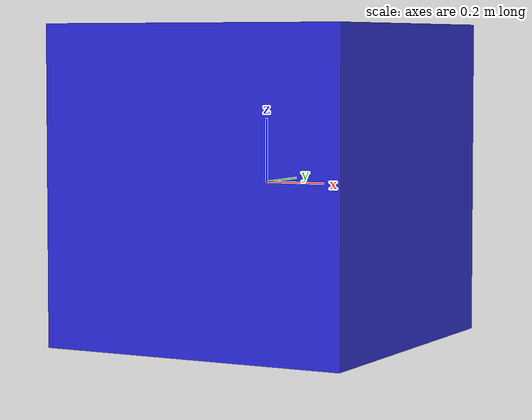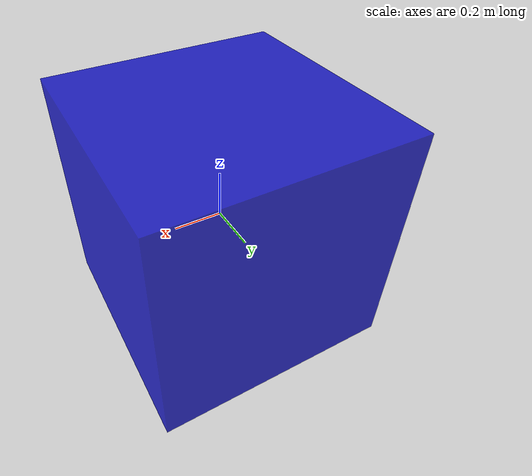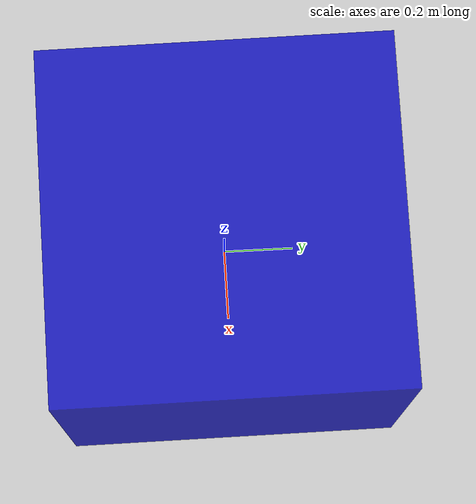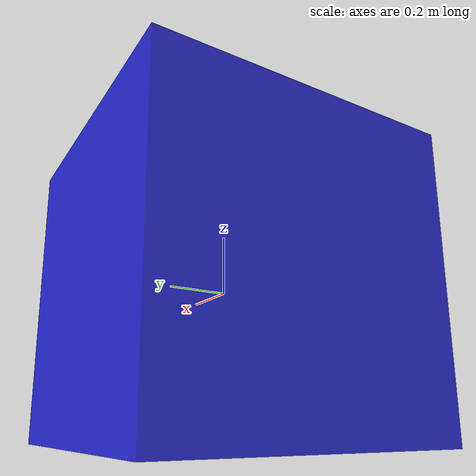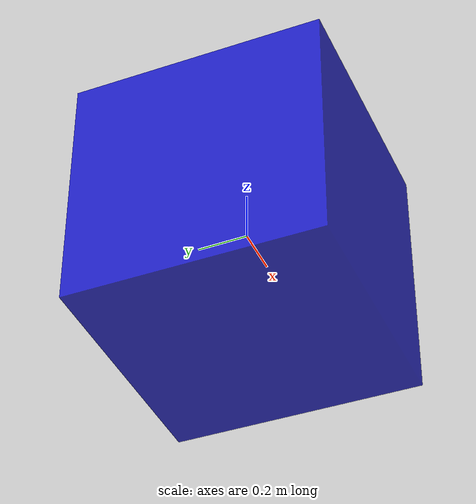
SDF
<?xml version="1.0"?>
<sdf version="1.7">

  <!-- world->ghost_body_y->ghost_body_z_sphere-->
  <model name="simple_cuboid_1m">
    <!-- The model for a solid box of uniform density. -->
    <link name="ghost_body_y">
      <inertial>
        <mass>1.0e-6</mass>
        <inertia>
          <ixx>1.0e-6</ixx>
          <ixy>0</ixy>
          <ixz>0</ixz>
          <iyy>1.0e-6</iyy>
          <iyz>0</iyz>
          <izz>1.0e-6</izz>
        </inertia>
      </inertial>
    </link>

    <link name="ghost_body_z">
      <inertial>
        <mass>1.0e-6</mass>
        <inertia>
          <ixx>1.0e-6</ixx>
          <ixy>0</ixy>
          <ixz>0</ixz>
          <iyy>1.0e-6</iyy>
          <iyz>0</iyz>
          <izz>1.0e-6</izz>
        </inertia>
      </inertial>
    </link>

    <joint name="y_slider" type="prismatic">
      <parent>world</parent>
      <child>ghost_body_y</child>
      <axis>
        <xyz>0 1 0</xyz>
        <!-- Drake attaches an actuator to all joints with a non-zero effort
             limit. We do not want an actuator for this joint. -->
        <limit>
          <effort>0</effort>
        </limit>
	<dynamics>
	  <damping>1000.0</damping>
	</dynamics>
      </axis>
    </joint>

    <joint name="z_slider" type="prismatic">
      <parent>ghost_body_y</parent>
      <child>ghost_body_z</child>
      <axis>
        <xyz>0 0 1</xyz>
        <!-- Drake attaches an actuator to all joints with a non-zero effort
             limit. We do not want an actuator for this joint and therefore we
             set a zero effort limit. -->
        <limit>
          <effort>0</effort>
        </limit>
	<dynamics>
	  <damping>1000.0</damping>
	</dynamics>
      </axis>
    </joint>

    <joint name="rotation" type="revolute">
      <parent>ghost_body_z</parent>
      <child>box</child>
      <axis>
        <xyz>1 0 0</xyz>
        <!-- Drake attaches an actuator to all joints with a non-zero effort
             limit. We do not want an actuator for this joint and therefore we
             set a zero effort limit. -->
        <limit>
          <effort>0</effort>
        </limit>
	<dynamics>
	  <damping>1000.0</damping>
	</dynamics>
      </axis>
    </joint>

    <link name="box">
      <inertial>
        <mass>5.0</mass>
        <inertia>
          <ixx>0.166666666666667</ixx>
          <ixy>0</ixy>
          <ixz>0</ixz>
          <iyy>0.166666666666667</iyy>
          <iyz>0</iyz>
          <izz>0.166666666666667</izz>
        </inertia>
      </inertial>

      <visual name="box_visual">
        <geometry>
          <box>
            <size>0.999 0.999 0.999</size>
          </box>
        </geometry>
        <material>
          <diffuse>0.0 0.0 0.8 0.8</diffuse>
        </material>
      </visual>

      <collision name="collision">
        <geometry>
          <box>
            <size>0.999 0.999 0.999</size>
          </box>
        </geometry>
        <surface>
          <friction>
            <ode>
              <mu>0.5</mu>
              <mu2>0.5</mu2>
            </ode>
          </friction>
        </surface>
      </collision>

      <collision name="minus_x_lower_left_corner">
        <pose> -0.5 -0.5 -0.5 0 0 0</pose>
        <geometry>
          <sphere>
            <radius>1e-7</radius>
          </sphere>
        </geometry>
      </collision>

      <collision name="minus_x_lower_right_corner">
        <pose> -0.5 0.5 -0.5 0 0 0 </pose>
        <geometry>
          <sphere>
            <radius>1e-7</radius>
          </sphere>
        </geometry>
      </collision>

      <collision name="plus_x_lower_left_corner">
        <pose> 0.5 -0.5 -0.5 0 0 0</pose>
        <geometry>
          <sphere>
            <radius>1e-7</radius>
          </sphere>
        </geometry>
      </collision>

      <collision name="plus_x_lower_right_corner">
        <pose> 0.5 0.5 -0.5 0 0 0 </pose>
        <geometry>
          <sphere>
            <radius>1e-7</radius>
          </sphere>
        </geometry>
      </collision>

      <collision name="minus_x_upper_left_corner">
        <pose> -0.5 -0.5 0.5 0 0 0</pose>
        <geometry>
          <sphere>
            <radius>1e-7</radius>
          </sphere>
        </geometry>
      </collision>

      <collision name="minus_x_upper_right_corner">
        <pose> -0.5 0.5 0.5 0 0 0 </pose>
        <geometry>
          <sphere>
            <radius>1e-7</radius>
          </sphere>
        </geometry>
      </collision>

      <collision name="plus_x_upper_left_corner">
        <pose> 0.5 -0.5 0.5 0 0 0</pose>
        <geometry>
          <sphere>
            <radius>1e-7</radius>
          </sphere>
        </geometry>
      </collision>

      <collision name="plus_x_upper_right_corner">
        <pose> 0.5 0.5 0.5 0 0 0 </pose>
        <geometry>
          <sphere>
            <radius>1e-7</radius>
          </sphere>
        </geometry>
      </collision>

    </link>
  </model>
</sdf>
